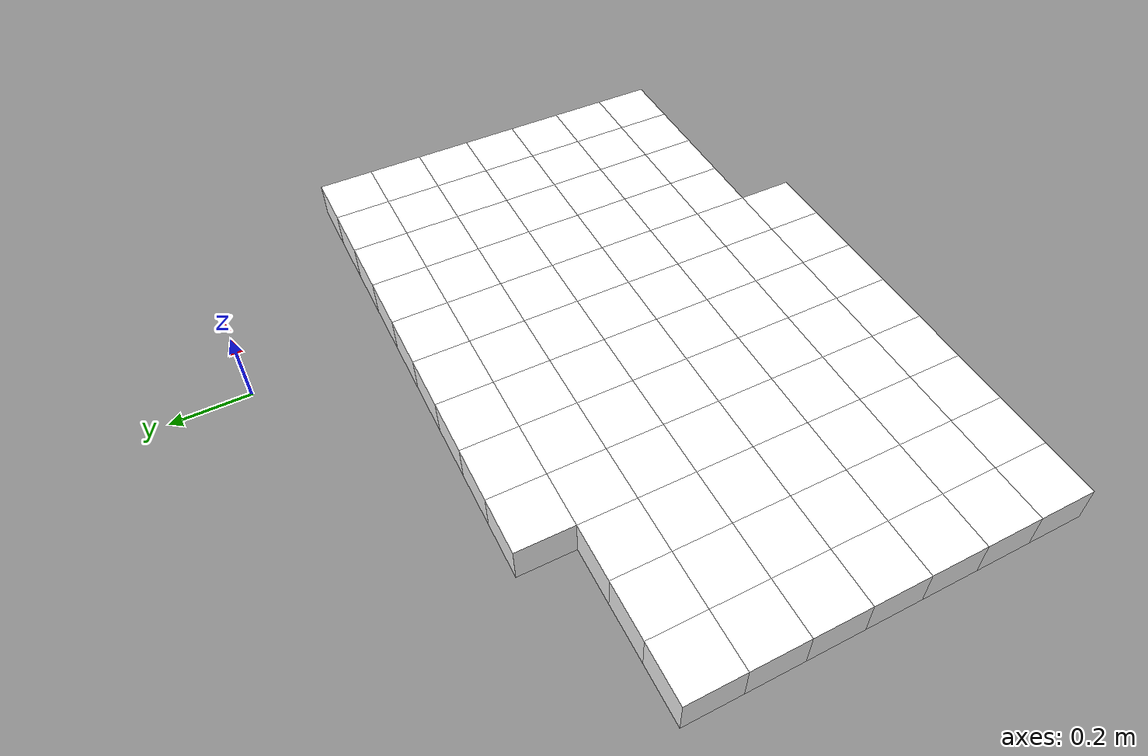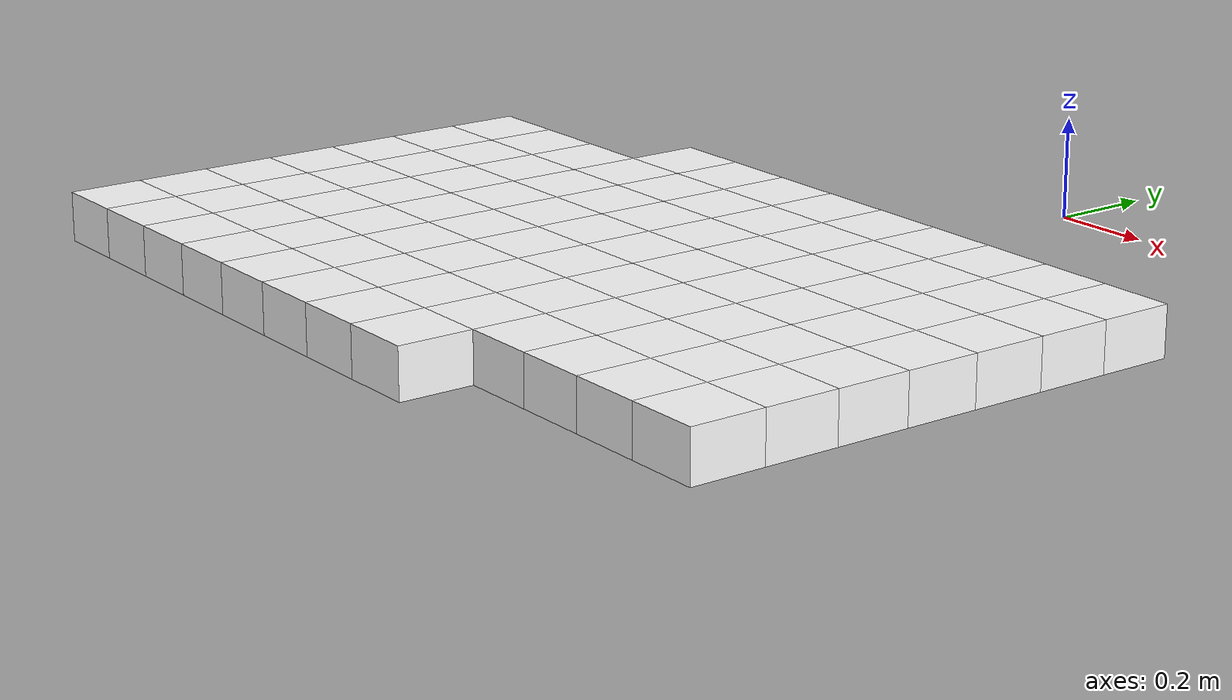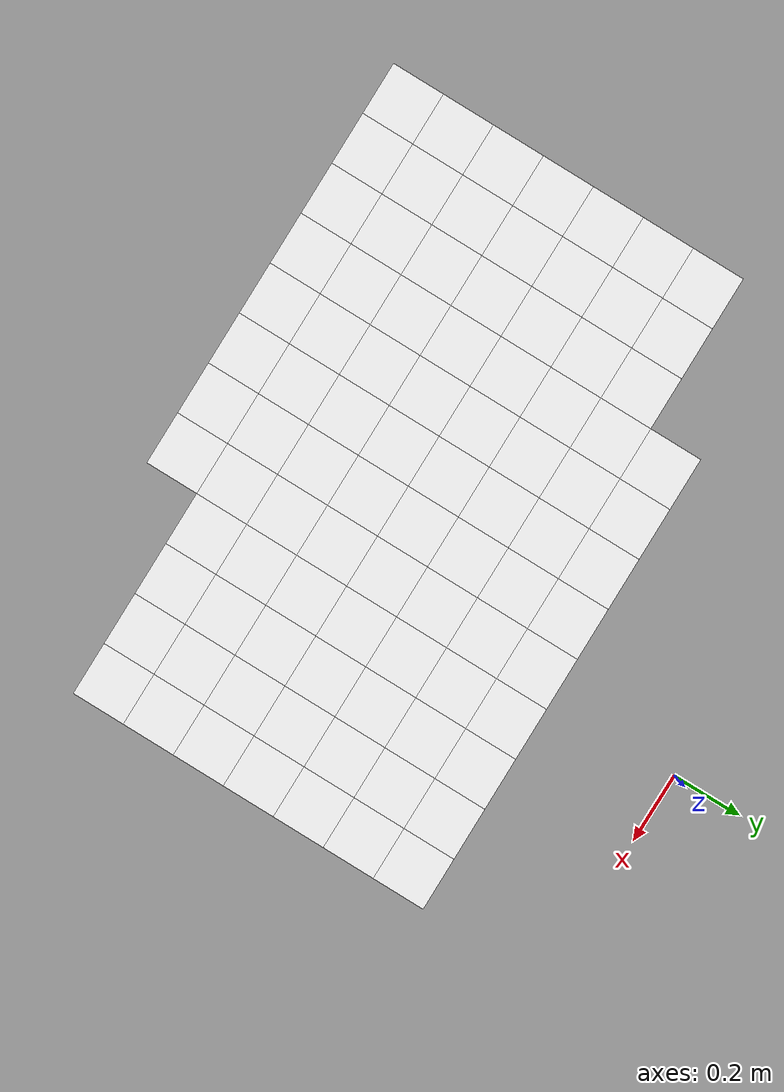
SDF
<sdf version="1.7">
 <world name="default">
  <include><uri>model://sun</uri></include>
  <model name="static_environment">
   <static>true</static>
   <link name="region_128">
    <pose>-1.100106780024366 -0.60008007759561 0.0 0.0 0.0 4.7123</pose>
    <collision name="region_128_collision">
     <geometry><box><size>0.15 0.15 0.1</size></box></geometry>
     <surface><friction><ode><mu>1.0</mu><mu2>1.0</mu2></ode></friction></surface>
    </collision>
    <visual name="region_128_visual">
     <geometry><box><size>0.15 0.15 0.1</size></box></geometry>
     <material><ambient>1.0 1.0 1.0 1.0</ambient><diffuse>1.0 1.0 1.0 1.0</diffuse></material>
    </visual>
   </link>
   <link name="region_129">
    <pose>-1.100120127082052 -0.7500800770017967 0.0 0.0 0.0 4.7123</pose>
    <collision name="region_129_collision">
     <geometry><box><size>0.15 0.15 0.1</size></box></geometry>
     <surface><friction><ode><mu>1.0</mu><mu2>1.0</mu2></ode></friction></surface>
    </collision>
    <visual name="region_129_visual">
     <geometry><box><size>0.15 0.15 0.1</size></box></geometry>
     <material><ambient>1.0 1.0 1.0 1.0</ambient><diffuse>1.0 1.0 1.0 1.0</diffuse></material>
    </visual>
   </link>
   <link name="region_130">
    <pose>-1.1001334741397377 -0.9000800764079836 0.0 0.0 0.0 4.7123</pose>
    <collision name="region_130_collision">
     <geometry><box><size>0.15 0.15 0.1</size></box></geometry>
     <surface><friction><ode><mu>1.0</mu><mu2>1.0</mu2></ode></friction></surface>
    </collision>
    <visual name="region_130_visual">
     <geometry><box><size>0.15 0.15 0.1</size></box></geometry>
     <material><ambient>1.0 1.0 1.0 1.0</ambient><diffuse>1.0 1.0 1.0 1.0</diffuse></material>
    </visual>
   </link>
   <link name="region_131">
    <pose>-1.1001468211974235 -1.0500800758141704 0.0 0.0 0.0 4.7123</pose>
    <collision name="region_131_collision">
     <geometry><box><size>0.15 0.15 0.1</size></box></geometry>
     <surface><friction><ode><mu>1.0</mu><mu2>1.0</mu2></ode></friction></surface>
    </collision>
    <visual name="region_131_visual">
     <geometry><box><size>0.15 0.15 0.1</size></box></geometry>
     <material><ambient>1.0 1.0 1.0 1.0</ambient><diffuse>1.0 1.0 1.0 1.0</diffuse></material>
    </visual>
   </link>
   <link name="region_132">
    <pose>-1.1001601682551094 -1.2000800752203569 0.0 0.0 0.0 4.7123</pose>
    <collision name="region_132_collision">
     <geometry><box><size>0.15 0.15 0.1</size></box></geometry>
     <surface><friction><ode><mu>1.0</mu><mu2>1.0</mu2></ode></friction></surface>
    </collision>
    <visual name="region_132_visual">
     <geometry><box><size>0.15 0.15 0.1</size></box></geometry>
     <material><ambient>1.0 1.0 1.0 1.0</ambient><diffuse>1.0 1.0 1.0 1.0</diffuse></material>
    </visual>
   </link>
   <link name="region_133">
    <pose>-1.1001735153127954 -1.3500800746265438 0.0 0.0 0.0 4.7123</pose>
    <collision name="region_133_collision">
     <geometry><box><size>0.15 0.15 0.1</size></box></geometry>
     <surface><friction><ode><mu>1.0</mu><mu2>1.0</mu2></ode></friction></surface>
    </collision>
    <visual name="region_133_visual">
     <geometry><box><size>0.15 0.15 0.1</size></box></geometry>
     <material><ambient>1.0 1.0 1.0 1.0</ambient><diffuse>1.0 1.0 1.0 1.0</diffuse></material>
    </visual>
   </link>
   <link name="region_134">
    <pose>-1.1001868623704811 -1.5000800740327307 0.0 0.0 0.0 4.7123</pose>
    <collision name="region_134_collision">
     <geometry><box><size>0.15 0.15 0.1</size></box></geometry>
     <surface><friction><ode><mu>1.0</mu><mu2>1.0</mu2></ode></friction></surface>
    </collision>
    <visual name="region_134_visual">
     <geometry><box><size>0.15 0.15 0.1</size></box></geometry>
     <material><ambient>1.0 1.0 1.0 1.0</ambient><diffuse>1.0 1.0 1.0 1.0</diffuse></material>
    </visual>
   </link>
   <link name="region_148">
    <pose>-0.9501067806181791 -0.6000934246532957 0.0 0.0 0.0 4.7123</pose>
    <collision name="region_148_collision">
     <geometry><box><size>0.15 0.15 0.1</size></box></geometry>
     <surface><friction><ode><mu>1.0</mu><mu2>1.0</mu2></ode></friction></surface>
    </collision>
    <visual name="region_148_visual">
     <geometry><box><size>0.15 0.15 0.1</size></box></geometry>
     <material><ambient>1.0 1.0 1.0 1.0</ambient><diffuse>1.0 1.0 1.0 1.0</diffuse></material>
    </visual>
   </link>
   <link name="region_149">
    <pose>-0.9501201276758648 -0.7500934240594824 0.0 0.0 0.0 4.7123</pose>
    <collision name="region_149_collision">
     <geometry><box><size>0.15 0.15 0.1</size></box></geometry>
     <surface><friction><ode><mu>1.0</mu><mu2>1.0</mu2></ode></friction></surface>
    </collision>
    <visual name="region_149_visual">
     <geometry><box><size>0.15 0.15 0.1</size></box></geometry>
     <material><ambient>1.0 1.0 1.0 1.0</ambient><diffuse>1.0 1.0 1.0 1.0</diffuse></material>
    </visual>
   </link>
   <link name="region_150">
    <pose>-0.9501334747335508 -0.9000934234656693 0.0 0.0 0.0 4.7123</pose>
    <collision name="region_150_collision">
     <geometry><box><size>0.15 0.15 0.1</size></box></geometry>
     <surface><friction><ode><mu>1.0</mu><mu2>1.0</mu2></ode></friction></surface>
    </collision>
    <visual name="region_150_visual">
     <geometry><box><size>0.15 0.15 0.1</size></box></geometry>
     <material><ambient>1.0 1.0 1.0 1.0</ambient><diffuse>1.0 1.0 1.0 1.0</diffuse></material>
    </visual>
   </link>
   <link name="region_151">
    <pose>-0.9501468217912368 -1.0500934228718561 0.0 0.0 0.0 4.7123</pose>
    <collision name="region_151_collision">
     <geometry><box><size>0.15 0.15 0.1</size></box></geometry>
     <surface><friction><ode><mu>1.0</mu><mu2>1.0</mu2></ode></friction></surface>
    </collision>
    <visual name="region_151_visual">
     <geometry><box><size>0.15 0.15 0.1</size></box></geometry>
     <material><ambient>1.0 1.0 1.0 1.0</ambient><diffuse>1.0 1.0 1.0 1.0</diffuse></material>
    </visual>
   </link>
   <link name="region_152">
    <pose>-0.9501601688489225 -1.2000934222780426 0.0 0.0 0.0 4.7123</pose>
    <collision name="region_152_collision">
     <geometry><box><size>0.15 0.15 0.1</size></box></geometry>
     <surface><friction><ode><mu>1.0</mu><mu2>1.0</mu2></ode></friction></surface>
    </collision>
    <visual name="region_152_visual">
     <geometry><box><size>0.15 0.15 0.1</size></box></geometry>
     <material><ambient>1.0 1.0 1.0 1.0</ambient><diffuse>1.0 1.0 1.0 1.0</diffuse></material>
    </visual>
   </link>
   <link name="region_153">
    <pose>-0.9501735159066085 -1.3500934216842295 0.0 0.0 0.0 4.7123</pose>
    <collision name="region_153_collision">
     <geometry><box><size>0.15 0.15 0.1</size></box></geometry>
     <surface><friction><ode><mu>1.0</mu><mu2>1.0</mu2></ode></friction></surface>
    </collision>
    <visual name="region_153_visual">
     <geometry><box><size>0.15 0.15 0.1</size></box></geometry>
     <material><ambient>1.0 1.0 1.0 1.0</ambient><diffuse>1.0 1.0 1.0 1.0</diffuse></material>
    </visual>
   </link>
   <link name="region_154">
    <pose>-0.9501868629642942 -1.5000934210904164 0.0 0.0 0.0 4.7123</pose>
    <collision name="region_154_collision">
     <geometry><box><size>0.15 0.15 0.1</size></box></geometry>
     <surface><friction><ode><mu>1.0</mu><mu2>1.0</mu2></ode></friction></surface>
    </collision>
    <visual name="region_154_visual">
     <geometry><box><size>0.15 0.15 0.1</size></box></geometry>
     <material><ambient>1.0 1.0 1.0 1.0</ambient><diffuse>1.0 1.0 1.0 1.0</diffuse></material>
    </visual>
   </link>
   <link name="region_168">
    <pose>-0.8001067812119924 -0.6001067717109817 0.0 0.0 0.0 4.7123</pose>
    <collision name="region_168_collision">
     <geometry><box><size>0.15 0.15 0.1</size></box></geometry>
     <surface><friction><ode><mu>1.0</mu><mu2>1.0</mu2></ode></friction></surface>
    </collision>
    <visual name="region_168_visual">
     <geometry><box><size>0.15 0.15 0.1</size></box></geometry>
     <material><ambient>1.0 1.0 1.0 1.0</ambient><diffuse>1.0 1.0 1.0 1.0</diffuse></material>
    </visual>
   </link>
   <link name="region_169">
    <pose>-0.8001201282696782 -0.7501067711171684 0.0 0.0 0.0 4.7123</pose>
    <collision name="region_169_collision">
     <geometry><box><size>0.15 0.15 0.1</size></box></geometry>
     <surface><friction><ode><mu>1.0</mu><mu2>1.0</mu2></ode></friction></surface>
    </collision>
    <visual name="region_169_visual">
     <geometry><box><size>0.15 0.15 0.1</size></box></geometry>
     <material><ambient>1.0 1.0 1.0 1.0</ambient><diffuse>1.0 1.0 1.0 1.0</diffuse></material>
    </visual>
   </link>
   <link name="region_170">
    <pose>-0.8001334753273641 -0.9001067705233553 0.0 0.0 0.0 4.7123</pose>
    <collision name="region_170_collision">
     <geometry><box><size>0.15 0.15 0.1</size></box></geometry>
     <surface><friction><ode><mu>1.0</mu><mu2>1.0</mu2></ode></friction></surface>
    </collision>
    <visual name="region_170_visual">
     <geometry><box><size>0.15 0.15 0.1</size></box></geometry>
     <material><ambient>1.0 1.0 1.0 1.0</ambient><diffuse>1.0 1.0 1.0 1.0</diffuse></material>
    </visual>
   </link>
   <link name="region_171">
    <pose>-0.8001468223850501 -1.0501067699295419 0.0 0.0 0.0 4.7123</pose>
    <collision name="region_171_collision">
     <geometry><box><size>0.15 0.15 0.1</size></box></geometry>
     <surface><friction><ode><mu>1.0</mu><mu2>1.0</mu2></ode></friction></surface>
    </collision>
    <visual name="region_171_visual">
     <geometry><box><size>0.15 0.15 0.1</size></box></geometry>
     <material><ambient>1.0 1.0 1.0 1.0</ambient><diffuse>1.0 1.0 1.0 1.0</diffuse></material>
    </visual>
   </link>
   <link name="region_172">
    <pose>-0.8001601694427358 -1.2001067693357288 0.0 0.0 0.0 4.7123</pose>
    <collision name="region_172_collision">
     <geometry><box><size>0.15 0.15 0.1</size></box></geometry>
     <surface><friction><ode><mu>1.0</mu><mu2>1.0</mu2></ode></friction></surface>
    </collision>
    <visual name="region_172_visual">
     <geometry><box><size>0.15 0.15 0.1</size></box></geometry>
     <material><ambient>1.0 1.0 1.0 1.0</ambient><diffuse>1.0 1.0 1.0 1.0</diffuse></material>
    </visual>
   </link>
   <link name="region_173">
    <pose>-0.8001735165004218 -1.3501067687419153 0.0 0.0 0.0 4.7123</pose>
    <collision name="region_173_collision">
     <geometry><box><size>0.15 0.15 0.1</size></box></geometry>
     <surface><friction><ode><mu>1.0</mu><mu2>1.0</mu2></ode></friction></surface>
    </collision>
    <visual name="region_173_visual">
     <geometry><box><size>0.15 0.15 0.1</size></box></geometry>
     <material><ambient>1.0 1.0 1.0 1.0</ambient><diffuse>1.0 1.0 1.0 1.0</diffuse></material>
    </visual>
   </link>
   <link name="region_174">
    <pose>-0.8001868635581075 -1.5001067681481022 0.0 0.0 0.0 4.7123</pose>
    <collision name="region_174_collision">
     <geometry><box><size>0.15 0.15 0.1</size></box></geometry>
     <surface><friction><ode><mu>1.0</mu><mu2>1.0</mu2></ode></friction></surface>
    </collision>
    <visual name="region_174_visual">
     <geometry><box><size>0.15 0.15 0.1</size></box></geometry>
     <material><ambient>1.0 1.0 1.0 1.0</ambient><diffuse>1.0 1.0 1.0 1.0</diffuse></material>
    </visual>
   </link>
   <link name="region_187">
    <pose>-0.6500934347481198 -0.45012011936248075 0.0 0.0 0.0 4.7123</pose>
    <collision name="region_187_collision">
     <geometry><box><size>0.15 0.15 0.1</size></box></geometry>
     <surface><friction><ode><mu>1.0</mu><mu2>1.0</mu2></ode></friction></surface>
    </collision>
    <visual name="region_187_visual">
     <geometry><box><size>0.15 0.15 0.1</size></box></geometry>
     <material><ambient>1.0 1.0 1.0 1.0</ambient><diffuse>1.0 1.0 1.0 1.0</diffuse></material>
    </visual>
   </link>
   <link name="region_188">
    <pose>-0.6501067818058057 -0.6001201187686674 0.0 0.0 0.0 4.7123</pose>
    <collision name="region_188_collision">
     <geometry><box><size>0.15 0.15 0.1</size></box></geometry>
     <surface><friction><ode><mu>1.0</mu><mu2>1.0</mu2></ode></friction></surface>
    </collision>
    <visual name="region_188_visual">
     <geometry><box><size>0.15 0.15 0.1</size></box></geometry>
     <material><ambient>1.0 1.0 1.0 1.0</ambient><diffuse>1.0 1.0 1.0 1.0</diffuse></material>
    </visual>
   </link>
   <link name="region_189">
    <pose>-0.6501201288634915 -0.7501201181748541 0.0 0.0 0.0 4.7123</pose>
    <collision name="region_189_collision">
     <geometry><box><size>0.15 0.15 0.1</size></box></geometry>
     <surface><friction><ode><mu>1.0</mu><mu2>1.0</mu2></ode></friction></surface>
    </collision>
    <visual name="region_189_visual">
     <geometry><box><size>0.15 0.15 0.1</size></box></geometry>
     <material><ambient>1.0 1.0 1.0 1.0</ambient><diffuse>1.0 1.0 1.0 1.0</diffuse></material>
    </visual>
   </link>
   <link name="region_190">
    <pose>-0.6501334759211774 -0.900120117581041 0.0 0.0 0.0 4.7123</pose>
    <collision name="region_190_collision">
     <geometry><box><size>0.15 0.15 0.1</size></box></geometry>
     <surface><friction><ode><mu>1.0</mu><mu2>1.0</mu2></ode></friction></surface>
    </collision>
    <visual name="region_190_visual">
     <geometry><box><size>0.15 0.15 0.1</size></box></geometry>
     <material><ambient>1.0 1.0 1.0 1.0</ambient><diffuse>1.0 1.0 1.0 1.0</diffuse></material>
    </visual>
   </link>
   <link name="region_191">
    <pose>-0.6501468229788634 -1.0501201169872276 0.0 0.0 0.0 4.7123</pose>
    <collision name="region_191_collision">
     <geometry><box><size>0.15 0.15 0.1</size></box></geometry>
     <surface><friction><ode><mu>1.0</mu><mu2>1.0</mu2></ode></friction></surface>
    </collision>
    <visual name="region_191_visual">
     <geometry><box><size>0.15 0.15 0.1</size></box></geometry>
     <material><ambient>1.0 1.0 1.0 1.0</ambient><diffuse>1.0 1.0 1.0 1.0</diffuse></material>
    </visual>
   </link>
   <link name="region_192">
    <pose>-0.6501601700365491 -1.2001201163934145 0.0 0.0 0.0 4.7123</pose>
    <collision name="region_192_collision">
     <geometry><box><size>0.15 0.15 0.1</size></box></geometry>
     <surface><friction><ode><mu>1.0</mu><mu2>1.0</mu2></ode></friction></surface>
    </collision>
    <visual name="region_192_visual">
     <geometry><box><size>0.15 0.15 0.1</size></box></geometry>
     <material><ambient>1.0 1.0 1.0 1.0</ambient><diffuse>1.0 1.0 1.0 1.0</diffuse></material>
    </visual>
   </link>
   <link name="region_193">
    <pose>-0.6501735170942351 -1.350120115799601 0.0 0.0 0.0 4.7123</pose>
    <collision name="region_193_collision">
     <geometry><box><size>0.15 0.15 0.1</size></box></geometry>
     <surface><friction><ode><mu>1.0</mu><mu2>1.0</mu2></ode></friction></surface>
    </collision>
    <visual name="region_193_visual">
     <geometry><box><size>0.15 0.15 0.1</size></box></geometry>
     <material><ambient>1.0 1.0 1.0 1.0</ambient><diffuse>1.0 1.0 1.0 1.0</diffuse></material>
    </visual>
   </link>
   <link name="region_194">
    <pose>-0.6501868641519208 -1.5001201152057884 0.0 0.0 0.0 4.7123</pose>
    <collision name="region_194_collision">
     <geometry><box><size>0.15 0.15 0.1</size></box></geometry>
     <surface><friction><ode><mu>1.0</mu><mu2>1.0</mu2></ode></friction></surface>
    </collision>
    <visual name="region_194_visual">
     <geometry><box><size>0.15 0.15 0.1</size></box></geometry>
     <material><ambient>1.0 1.0 1.0 1.0</ambient><diffuse>1.0 1.0 1.0 1.0</diffuse></material>
    </visual>
   </link>
   <link name="region_207">
    <pose>-0.5000934353419328 -0.4501334664201667 0.0 0.0 0.0 4.7123</pose>
    <collision name="region_207_collision">
     <geometry><box><size>0.15 0.15 0.1</size></box></geometry>
     <surface><friction><ode><mu>1.0</mu><mu2>1.0</mu2></ode></friction></surface>
    </collision>
    <visual name="region_207_visual">
     <geometry><box><size>0.15 0.15 0.1</size></box></geometry>
     <material><ambient>1.0 1.0 1.0 1.0</ambient><diffuse>1.0 1.0 1.0 1.0</diffuse></material>
    </visual>
   </link>
   <link name="region_208">
    <pose>-0.5001067823996188 -0.6001334658263534 0.0 0.0 0.0 4.7123</pose>
    <collision name="region_208_collision">
     <geometry><box><size>0.15 0.15 0.1</size></box></geometry>
     <surface><friction><ode><mu>1.0</mu><mu2>1.0</mu2></ode></friction></surface>
    </collision>
    <visual name="region_208_visual">
     <geometry><box><size>0.15 0.15 0.1</size></box></geometry>
     <material><ambient>1.0 1.0 1.0 1.0</ambient><diffuse>1.0 1.0 1.0 1.0</diffuse></material>
    </visual>
   </link>
   <link name="region_209">
    <pose>-0.5001201294573046 -0.7501334652325401 0.0 0.0 0.0 4.7123</pose>
    <collision name="region_209_collision">
     <geometry><box><size>0.15 0.15 0.1</size></box></geometry>
     <surface><friction><ode><mu>1.0</mu><mu2>1.0</mu2></ode></friction></surface>
    </collision>
    <visual name="region_209_visual">
     <geometry><box><size>0.15 0.15 0.1</size></box></geometry>
     <material><ambient>1.0 1.0 1.0 1.0</ambient><diffuse>1.0 1.0 1.0 1.0</diffuse></material>
    </visual>
   </link>
   <link name="region_210">
    <pose>-0.5001334765149905 -0.900133464638727 0.0 0.0 0.0 4.7123</pose>
    <collision name="region_210_collision">
     <geometry><box><size>0.15 0.15 0.1</size></box></geometry>
     <surface><friction><ode><mu>1.0</mu><mu2>1.0</mu2></ode></friction></surface>
    </collision>
    <visual name="region_210_visual">
     <geometry><box><size>0.15 0.15 0.1</size></box></geometry>
     <material><ambient>1.0 1.0 1.0 1.0</ambient><diffuse>1.0 1.0 1.0 1.0</diffuse></material>
    </visual>
   </link>
   <link name="region_211">
    <pose>-0.5001468235726765 -1.0501334640449138 0.0 0.0 0.0 4.7123</pose>
    <collision name="region_211_collision">
     <geometry><box><size>0.15 0.15 0.1</size></box></geometry>
     <surface><friction><ode><mu>1.0</mu><mu2>1.0</mu2></ode></friction></surface>
    </collision>
    <visual name="region_211_visual">
     <geometry><box><size>0.15 0.15 0.1</size></box></geometry>
     <material><ambient>1.0 1.0 1.0 1.0</ambient><diffuse>1.0 1.0 1.0 1.0</diffuse></material>
    </visual>
   </link>
   <link name="region_212">
    <pose>-0.5001601706303622 -1.2001334634511003 0.0 0.0 0.0 4.7123</pose>
    <collision name="region_212_collision">
     <geometry><box><size>0.15 0.15 0.1</size></box></geometry>
     <surface><friction><ode><mu>1.0</mu><mu2>1.0</mu2></ode></friction></surface>
    </collision>
    <visual name="region_212_visual">
     <geometry><box><size>0.15 0.15 0.1</size></box></geometry>
     <material><ambient>1.0 1.0 1.0 1.0</ambient><diffuse>1.0 1.0 1.0 1.0</diffuse></material>
    </visual>
   </link>
   <link name="region_213">
    <pose>-0.5001735176880482 -1.3501334628572872 0.0 0.0 0.0 4.7123</pose>
    <collision name="region_213_collision">
     <geometry><box><size>0.15 0.15 0.1</size></box></geometry>
     <surface><friction><ode><mu>1.0</mu><mu2>1.0</mu2></ode></friction></surface>
    </collision>
    <visual name="region_213_visual">
     <geometry><box><size>0.15 0.15 0.1</size></box></geometry>
     <material><ambient>1.0 1.0 1.0 1.0</ambient><diffuse>1.0 1.0 1.0 1.0</diffuse></material>
    </visual>
   </link>
   <link name="region_214">
    <pose>-0.5001868647457339 -1.500133462263474 0.0 0.0 0.0 4.7123</pose>
    <collision name="region_214_collision">
     <geometry><box><size>0.15 0.15 0.1</size></box></geometry>
     <surface><friction><ode><mu>1.0</mu><mu2>1.0</mu2></ode></friction></surface>
    </collision>
    <visual name="region_214_visual">
     <geometry><box><size>0.15 0.15 0.1</size></box></geometry>
     <material><ambient>1.0 1.0 1.0 1.0</ambient><diffuse>1.0 1.0 1.0 1.0</diffuse></material>
    </visual>
   </link>
   <link name="region_227">
    <pose>-0.35009343593574616 -0.4501468134778527 0.0 0.0 0.0 4.7123</pose>
    <collision name="region_227_collision">
     <geometry><box><size>0.15 0.15 0.1</size></box></geometry>
     <surface><friction><ode><mu>1.0</mu><mu2>1.0</mu2></ode></friction></surface>
    </collision>
    <visual name="region_227_visual">
     <geometry><box><size>0.15 0.15 0.1</size></box></geometry>
     <material><ambient>1.0 1.0 1.0 1.0</ambient><diffuse>1.0 1.0 1.0 1.0</diffuse></material>
    </visual>
   </link>
   <link name="region_228">
    <pose>-0.3501067829934321 -0.6001468128840394 0.0 0.0 0.0 4.7123</pose>
    <collision name="region_228_collision">
     <geometry><box><size>0.15 0.15 0.1</size></box></geometry>
     <surface><friction><ode><mu>1.0</mu><mu2>1.0</mu2></ode></friction></surface>
    </collision>
    <visual name="region_228_visual">
     <geometry><box><size>0.15 0.15 0.1</size></box></geometry>
     <material><ambient>1.0 1.0 1.0 1.0</ambient><diffuse>1.0 1.0 1.0 1.0</diffuse></material>
    </visual>
   </link>
   <link name="region_229">
    <pose>-0.35012013005111786 -0.7501468122902261 0.0 0.0 0.0 4.7123</pose>
    <collision name="region_229_collision">
     <geometry><box><size>0.15 0.15 0.1</size></box></geometry>
     <surface><friction><ode><mu>1.0</mu><mu2>1.0</mu2></ode></friction></surface>
    </collision>
    <visual name="region_229_visual">
     <geometry><box><size>0.15 0.15 0.1</size></box></geometry>
     <material><ambient>1.0 1.0 1.0 1.0</ambient><diffuse>1.0 1.0 1.0 1.0</diffuse></material>
    </visual>
   </link>
   <link name="region_230">
    <pose>-0.3501334771088038 -0.900146811696413 0.0 0.0 0.0 4.7123</pose>
    <collision name="region_230_collision">
     <geometry><box><size>0.15 0.15 0.1</size></box></geometry>
     <surface><friction><ode><mu>1.0</mu><mu2>1.0</mu2></ode></friction></surface>
    </collision>
    <visual name="region_230_visual">
     <geometry><box><size>0.15 0.15 0.1</size></box></geometry>
     <material><ambient>1.0 1.0 1.0 1.0</ambient><diffuse>1.0 1.0 1.0 1.0</diffuse></material>
    </visual>
   </link>
   <link name="region_231">
    <pose>-0.3501468241664898 -1.0501468111025996 0.0 0.0 0.0 4.7123</pose>
    <collision name="region_231_collision">
     <geometry><box><size>0.15 0.15 0.1</size></box></geometry>
     <surface><friction><ode><mu>1.0</mu><mu2>1.0</mu2></ode></friction></surface>
    </collision>
    <visual name="region_231_visual">
     <geometry><box><size>0.15 0.15 0.1</size></box></geometry>
     <material><ambient>1.0 1.0 1.0 1.0</ambient><diffuse>1.0 1.0 1.0 1.0</diffuse></material>
    </visual>
   </link>
   <link name="region_232">
    <pose>-0.35016017122417553 -1.2001468105087865 0.0 0.0 0.0 4.7123</pose>
    <collision name="region_232_collision">
     <geometry><box><size>0.15 0.15 0.1</size></box></geometry>
     <surface><friction><ode><mu>1.0</mu><mu2>1.0</mu2></ode></friction></surface>
    </collision>
    <visual name="region_232_visual">
     <geometry><box><size>0.15 0.15 0.1</size></box></geometry>
     <material><ambient>1.0 1.0 1.0 1.0</ambient><diffuse>1.0 1.0 1.0 1.0</diffuse></material>
    </visual>
   </link>
   <link name="region_233">
    <pose>-0.3501735182818615 -1.350146809914973 0.0 0.0 0.0 4.7123</pose>
    <collision name="region_233_collision">
     <geometry><box><size>0.15 0.15 0.1</size></box></geometry>
     <surface><friction><ode><mu>1.0</mu><mu2>1.0</mu2></ode></friction></surface>
    </collision>
    <visual name="region_233_visual">
     <geometry><box><size>0.15 0.15 0.1</size></box></geometry>
     <material><ambient>1.0 1.0 1.0 1.0</ambient><diffuse>1.0 1.0 1.0 1.0</diffuse></material>
    </visual>
   </link>
   <link name="region_234">
    <pose>-0.35018686533954724 -1.5001468093211598 0.0 0.0 0.0 4.7123</pose>
    <collision name="region_234_collision">
     <geometry><box><size>0.15 0.15 0.1</size></box></geometry>
     <surface><friction><ode><mu>1.0</mu><mu2>1.0</mu2></ode></friction></surface>
    </collision>
    <visual name="region_234_visual">
     <geometry><box><size>0.15 0.15 0.1</size></box></geometry>
     <material><ambient>1.0 1.0 1.0 1.0</ambient><diffuse>1.0 1.0 1.0 1.0</diffuse></material>
    </visual>
   </link>
   <link name="region_247">
    <pose>-0.20009343652955947 -0.4501601605355384 0.0 0.0 0.0 4.7123</pose>
    <collision name="region_247_collision">
     <geometry><box><size>0.15 0.15 0.1</size></box></geometry>
     <surface><friction><ode><mu>1.0</mu><mu2>1.0</mu2></ode></friction></surface>
    </collision>
    <visual name="region_247_visual">
     <geometry><box><size>0.15 0.15 0.1</size></box></geometry>
     <material><ambient>1.0 1.0 1.0 1.0</ambient><diffuse>1.0 1.0 1.0 1.0</diffuse></material>
    </visual>
   </link>
   <link name="region_248">
    <pose>-0.20010678358724543 -0.6001601599417251 0.0 0.0 0.0 4.7123</pose>
    <collision name="region_248_collision">
     <geometry><box><size>0.15 0.15 0.1</size></box></geometry>
     <surface><friction><ode><mu>1.0</mu><mu2>1.0</mu2></ode></friction></surface>
    </collision>
    <visual name="region_248_visual">
     <geometry><box><size>0.15 0.15 0.1</size></box></geometry>
     <material><ambient>1.0 1.0 1.0 1.0</ambient><diffuse>1.0 1.0 1.0 1.0</diffuse></material>
    </visual>
   </link>
   <link name="region_249">
    <pose>-0.20012013064493117 -0.7501601593479118 0.0 0.0 0.0 4.7123</pose>
    <collision name="region_249_collision">
     <geometry><box><size>0.15 0.15 0.1</size></box></geometry>
     <surface><friction><ode><mu>1.0</mu><mu2>1.0</mu2></ode></friction></surface>
    </collision>
    <visual name="region_249_visual">
     <geometry><box><size>0.15 0.15 0.1</size></box></geometry>
     <material><ambient>1.0 1.0 1.0 1.0</ambient><diffuse>1.0 1.0 1.0 1.0</diffuse></material>
    </visual>
   </link>
   <link name="region_250">
    <pose>-0.20013347770261714 -0.9001601587540987 0.0 0.0 0.0 4.7123</pose>
    <collision name="region_250_collision">
     <geometry><box><size>0.15 0.15 0.1</size></box></geometry>
     <surface><friction><ode><mu>1.0</mu><mu2>1.0</mu2></ode></friction></surface>
    </collision>
    <visual name="region_250_visual">
     <geometry><box><size>0.15 0.15 0.1</size></box></geometry>
     <material><ambient>1.0 1.0 1.0 1.0</ambient><diffuse>1.0 1.0 1.0 1.0</diffuse></material>
    </visual>
   </link>
   <link name="region_251">
    <pose>-0.2001468247603031 -1.0501601581602853 0.0 0.0 0.0 4.7123</pose>
    <collision name="region_251_collision">
     <geometry><box><size>0.15 0.15 0.1</size></box></geometry>
     <surface><friction><ode><mu>1.0</mu><mu2>1.0</mu2></ode></friction></surface>
    </collision>
    <visual name="region_251_visual">
     <geometry><box><size>0.15 0.15 0.1</size></box></geometry>
     <material><ambient>1.0 1.0 1.0 1.0</ambient><diffuse>1.0 1.0 1.0 1.0</diffuse></material>
    </visual>
   </link>
   <link name="region_252">
    <pose>-0.20016017181798884 -1.2001601575664722 0.0 0.0 0.0 4.7123</pose>
    <collision name="region_252_collision">
     <geometry><box><size>0.15 0.15 0.1</size></box></geometry>
     <surface><friction><ode><mu>1.0</mu><mu2>1.0</mu2></ode></friction></surface>
    </collision>
    <visual name="region_252_visual">
     <geometry><box><size>0.15 0.15 0.1</size></box></geometry>
     <material><ambient>1.0 1.0 1.0 1.0</ambient><diffuse>1.0 1.0 1.0 1.0</diffuse></material>
    </visual>
   </link>
   <link name="region_253">
    <pose>-0.2001735188756748 -1.3501601569726587 0.0 0.0 0.0 4.7123</pose>
    <collision name="region_253_collision">
     <geometry><box><size>0.15 0.15 0.1</size></box></geometry>
     <surface><friction><ode><mu>1.0</mu><mu2>1.0</mu2></ode></friction></surface>
    </collision>
    <visual name="region_253_visual">
     <geometry><box><size>0.15 0.15 0.1</size></box></geometry>
     <material><ambient>1.0 1.0 1.0 1.0</ambient><diffuse>1.0 1.0 1.0 1.0</diffuse></material>
    </visual>
   </link>
   <link name="region_254">
    <pose>-0.20018686593336055 -1.500160156378846 0.0 0.0 0.0 4.7123</pose>
    <collision name="region_254_collision">
     <geometry><box><size>0.15 0.15 0.1</size></box></geometry>
     <surface><friction><ode><mu>1.0</mu><mu2>1.0</mu2></ode></friction></surface>
    </collision>
    <visual name="region_254_visual">
     <geometry><box><size>0.15 0.15 0.1</size></box></geometry>
     <material><ambient>1.0 1.0 1.0 1.0</ambient><diffuse>1.0 1.0 1.0 1.0</diffuse></material>
    </visual>
   </link>
   <link name="region_267">
    <pose>-0.050093437123372775 -0.4501735075932244 0.0 0.0 0.0 4.7123</pose>
    <collision name="region_267_collision">
     <geometry><box><size>0.15 0.15 0.1</size></box></geometry>
     <surface><friction><ode><mu>1.0</mu><mu2>1.0</mu2></ode></friction></surface>
    </collision>
    <visual name="region_267_visual">
     <geometry><box><size>0.15 0.15 0.1</size></box></geometry>
     <material><ambient>1.0 1.0 1.0 1.0</ambient><diffuse>1.0 1.0 1.0 1.0</diffuse></material>
    </visual>
   </link>
   <link name="region_268">
    <pose>-0.05010678418105874 -0.6001735069994111 0.0 0.0 0.0 4.7123</pose>
    <collision name="region_268_collision">
     <geometry><box><size>0.15 0.15 0.1</size></box></geometry>
     <surface><friction><ode><mu>1.0</mu><mu2>1.0</mu2></ode></friction></surface>
    </collision>
    <visual name="region_268_visual">
     <geometry><box><size>0.15 0.15 0.1</size></box></geometry>
     <material><ambient>1.0 1.0 1.0 1.0</ambient><diffuse>1.0 1.0 1.0 1.0</diffuse></material>
    </visual>
   </link>
   <link name="region_269">
    <pose>-0.05012013123874448 -0.7501735064055978 0.0 0.0 0.0 4.7123</pose>
    <collision name="region_269_collision">
     <geometry><box><size>0.15 0.15 0.1</size></box></geometry>
     <surface><friction><ode><mu>1.0</mu><mu2>1.0</mu2></ode></friction></surface>
    </collision>
    <visual name="region_269_visual">
     <geometry><box><size>0.15 0.15 0.1</size></box></geometry>
     <material><ambient>1.0 1.0 1.0 1.0</ambient><diffuse>1.0 1.0 1.0 1.0</diffuse></material>
    </visual>
   </link>
   <link name="region_270">
    <pose>-0.050133478296430445 -0.9001735058117847 0.0 0.0 0.0 4.7123</pose>
    <collision name="region_270_collision">
     <geometry><box><size>0.15 0.15 0.1</size></box></geometry>
     <surface><friction><ode><mu>1.0</mu><mu2>1.0</mu2></ode></friction></surface>
    </collision>
    <visual name="region_270_visual">
     <geometry><box><size>0.15 0.15 0.1</size></box></geometry>
     <material><ambient>1.0 1.0 1.0 1.0</ambient><diffuse>1.0 1.0 1.0 1.0</diffuse></material>
    </visual>
   </link>
   <link name="region_271">
    <pose>-0.05014682535411641 -1.0501735052179715 0.0 0.0 0.0 4.7123</pose>
    <collision name="region_271_collision">
     <geometry><box><size>0.15 0.15 0.1</size></box></geometry>
     <surface><friction><ode><mu>1.0</mu><mu2>1.0</mu2></ode></friction></surface>
    </collision>
    <visual name="region_271_visual">
     <geometry><box><size>0.15 0.15 0.1</size></box></geometry>
     <material><ambient>1.0 1.0 1.0 1.0</ambient><diffuse>1.0 1.0 1.0 1.0</diffuse></material>
    </visual>
   </link>
   <link name="region_272">
    <pose>-0.05016017241180215 -1.200173504624158 0.0 0.0 0.0 4.7123</pose>
    <collision name="region_272_collision">
     <geometry><box><size>0.15 0.15 0.1</size></box></geometry>
     <surface><friction><ode><mu>1.0</mu><mu2>1.0</mu2></ode></friction></surface>
    </collision>
    <visual name="region_272_visual">
     <geometry><box><size>0.15 0.15 0.1</size></box></geometry>
     <material><ambient>1.0 1.0 1.0 1.0</ambient><diffuse>1.0 1.0 1.0 1.0</diffuse></material>
    </visual>
   </link>
   <link name="region_273">
    <pose>-0.050173519469488115 -1.3501735040303449 0.0 0.0 0.0 4.7123</pose>
    <collision name="region_273_collision">
     <geometry><box><size>0.15 0.15 0.1</size></box></geometry>
     <surface><friction><ode><mu>1.0</mu><mu2>1.0</mu2></ode></friction></surface>
    </collision>
    <visual name="region_273_visual">
     <geometry><box><size>0.15 0.15 0.1</size></box></geometry>
     <material><ambient>1.0 1.0 1.0 1.0</ambient><diffuse>1.0 1.0 1.0 1.0</diffuse></material>
    </visual>
   </link>
   <link name="region_274">
    <pose>-0.05018686652717386 -1.5001735034365318 0.0 0.0 0.0 4.7123</pose>
    <collision name="region_274_collision">
     <geometry><box><size>0.15 0.15 0.1</size></box></geometry>
     <surface><friction><ode><mu>1.0</mu><mu2>1.0</mu2></ode></friction></surface>
    </collision>
    <visual name="region_274_visual">
     <geometry><box><size>0.15 0.15 0.1</size></box></geometry>
     <material><ambient>1.0 1.0 1.0 1.0</ambient><diffuse>1.0 1.0 1.0 1.0</diffuse></material>
    </visual>
   </link>
   <link name="region_287">
    <pose>0.09990656228281436 -0.45018685465091013 0.0 0.0 0.0 4.7123</pose>
    <collision name="region_287_collision">
     <geometry><box><size>0.15 0.15 0.1</size></box></geometry>
     <surface><friction><ode><mu>1.0</mu><mu2>1.0</mu2></ode></friction></surface>
    </collision>
    <visual name="region_287_visual">
     <geometry><box><size>0.15 0.15 0.1</size></box></geometry>
     <material><ambient>1.0 1.0 1.0 1.0</ambient><diffuse>1.0 1.0 1.0 1.0</diffuse></material>
    </visual>
   </link>
   <link name="region_288">
    <pose>0.09989321522512862 -0.6001868540570968 0.0 0.0 0.0 4.7123</pose>
    <collision name="region_288_collision">
     <geometry><box><size>0.15 0.15 0.1</size></box></geometry>
     <surface><friction><ode><mu>1.0</mu><mu2>1.0</mu2></ode></friction></surface>
    </collision>
    <visual name="region_288_visual">
     <geometry><box><size>0.15 0.15 0.1</size></box></geometry>
     <material><ambient>1.0 1.0 1.0 1.0</ambient><diffuse>1.0 1.0 1.0 1.0</diffuse></material>
    </visual>
   </link>
   <link name="region_289">
    <pose>0.09987986816744243 -0.7501868534632835 0.0 0.0 0.0 4.7123</pose>
    <collision name="region_289_collision">
     <geometry><box><size>0.15 0.15 0.1</size></box></geometry>
     <surface><friction><ode><mu>1.0</mu><mu2>1.0</mu2></ode></friction></surface>
    </collision>
    <visual name="region_289_visual">
     <geometry><box><size>0.15 0.15 0.1</size></box></geometry>
     <material><ambient>1.0 1.0 1.0 1.0</ambient><diffuse>1.0 1.0 1.0 1.0</diffuse></material>
    </visual>
   </link>
   <link name="region_290">
    <pose>0.09986652110975669 -0.9001868528694704 0.0 0.0 0.0 4.7123</pose>
    <collision name="region_290_collision">
     <geometry><box><size>0.15 0.15 0.1</size></box></geometry>
     <surface><friction><ode><mu>1.0</mu><mu2>1.0</mu2></ode></friction></surface>
    </collision>
    <visual name="region_290_visual">
     <geometry><box><size>0.15 0.15 0.1</size></box></geometry>
     <material><ambient>1.0 1.0 1.0 1.0</ambient><diffuse>1.0 1.0 1.0 1.0</diffuse></material>
    </visual>
   </link>
   <link name="region_291">
    <pose>0.09985317405207095 -1.0501868522756572 0.0 0.0 0.0 4.7123</pose>
    <collision name="region_291_collision">
     <geometry><box><size>0.15 0.15 0.1</size></box></geometry>
     <surface><friction><ode><mu>1.0</mu><mu2>1.0</mu2></ode></friction></surface>
    </collision>
    <visual name="region_291_visual">
     <geometry><box><size>0.15 0.15 0.1</size></box></geometry>
     <material><ambient>1.0 1.0 1.0 1.0</ambient><diffuse>1.0 1.0 1.0 1.0</diffuse></material>
    </visual>
   </link>
   <link name="region_292">
    <pose>0.09983982699438476 -1.2001868516818437 0.0 0.0 0.0 4.7123</pose>
    <collision name="region_292_collision">
     <geometry><box><size>0.15 0.15 0.1</size></box></geometry>
     <surface><friction><ode><mu>1.0</mu><mu2>1.0</mu2></ode></friction></surface>
    </collision>
    <visual name="region_292_visual">
     <geometry><box><size>0.15 0.15 0.1</size></box></geometry>
     <material><ambient>1.0 1.0 1.0 1.0</ambient><diffuse>1.0 1.0 1.0 1.0</diffuse></material>
    </visual>
   </link>
   <link name="region_293">
    <pose>0.09982647993669902 -1.3501868510880306 0.0 0.0 0.0 4.7123</pose>
    <collision name="region_293_collision">
     <geometry><box><size>0.15 0.15 0.1</size></box></geometry>
     <surface><friction><ode><mu>1.0</mu><mu2>1.0</mu2></ode></friction></surface>
    </collision>
    <visual name="region_293_visual">
     <geometry><box><size>0.15 0.15 0.1</size></box></geometry>
     <material><ambient>1.0 1.0 1.0 1.0</ambient><diffuse>1.0 1.0 1.0 1.0</diffuse></material>
    </visual>
   </link>
   <link name="region_307">
    <pose>0.24990656168900083 -0.4502002017085961 0.0 0.0 0.0 4.7123</pose>
    <collision name="region_307_collision">
     <geometry><box><size>0.15 0.15 0.1</size></box></geometry>
     <surface><friction><ode><mu>1.0</mu><mu2>1.0</mu2></ode></friction></surface>
    </collision>
    <visual name="region_307_visual">
     <geometry><box><size>0.15 0.15 0.1</size></box></geometry>
     <material><ambient>1.0 1.0 1.0 1.0</ambient><diffuse>1.0 1.0 1.0 1.0</diffuse></material>
    </visual>
   </link>
   <link name="region_308">
    <pose>0.24989321463131509 -0.6002002011147828 0.0 0.0 0.0 4.7123</pose>
    <collision name="region_308_collision">
     <geometry><box><size>0.15 0.15 0.1</size></box></geometry>
     <surface><friction><ode><mu>1.0</mu><mu2>1.0</mu2></ode></friction></surface>
    </collision>
    <visual name="region_308_visual">
     <geometry><box><size>0.15 0.15 0.1</size></box></geometry>
     <material><ambient>1.0 1.0 1.0 1.0</ambient><diffuse>1.0 1.0 1.0 1.0</diffuse></material>
    </visual>
   </link>
   <link name="region_309">
    <pose>0.2498798675736289 -0.7502002005209695 0.0 0.0 0.0 4.7123</pose>
    <collision name="region_309_collision">
     <geometry><box><size>0.15 0.15 0.1</size></box></geometry>
     <surface><friction><ode><mu>1.0</mu><mu2>1.0</mu2></ode></friction></surface>
    </collision>
    <visual name="region_309_visual">
     <geometry><box><size>0.15 0.15 0.1</size></box></geometry>
     <material><ambient>1.0 1.0 1.0 1.0</ambient><diffuse>1.0 1.0 1.0 1.0</diffuse></material>
    </visual>
   </link>
   <link name="region_310">
    <pose>0.24986652051594316 -0.9002001999271564 0.0 0.0 0.0 4.7123</pose>
    <collision name="region_310_collision">
     <geometry><box><size>0.15 0.15 0.1</size></box></geometry>
     <surface><friction><ode><mu>1.0</mu><mu2>1.0</mu2></ode></friction></surface>
    </collision>
    <visual name="region_310_visual">
     <geometry><box><size>0.15 0.15 0.1</size></box></geometry>
     <material><ambient>1.0 1.0 1.0 1.0</ambient><diffuse>1.0 1.0 1.0 1.0</diffuse></material>
    </visual>
   </link>
   <link name="region_311">
    <pose>0.24985317345825742 -1.050200199333343 0.0 0.0 0.0 4.7123</pose>
    <collision name="region_311_collision">
     <geometry><box><size>0.15 0.15 0.1</size></box></geometry>
     <surface><friction><ode><mu>1.0</mu><mu2>1.0</mu2></ode></friction></surface>
    </collision>
    <visual name="region_311_visual">
     <geometry><box><size>0.15 0.15 0.1</size></box></geometry>
     <material><ambient>1.0 1.0 1.0 1.0</ambient><diffuse>1.0 1.0 1.0 1.0</diffuse></material>
    </visual>
   </link>
   <link name="region_312">
    <pose>0.24983982640057123 -1.2002001987395299 0.0 0.0 0.0 4.7123</pose>
    <collision name="region_312_collision">
     <geometry><box><size>0.15 0.15 0.1</size></box></geometry>
     <surface><friction><ode><mu>1.0</mu><mu2>1.0</mu2></ode></friction></surface>
    </collision>
    <visual name="region_312_visual">
     <geometry><box><size>0.15 0.15 0.1</size></box></geometry>
     <material><ambient>1.0 1.0 1.0 1.0</ambient><diffuse>1.0 1.0 1.0 1.0</diffuse></material>
    </visual>
   </link>
   <link name="region_313">
    <pose>0.2498264793428855 -1.3502001981457163 0.0 0.0 0.0 4.7123</pose>
    <collision name="region_313_collision">
     <geometry><box><size>0.15 0.15 0.1</size></box></geometry>
     <surface><friction><ode><mu>1.0</mu><mu2>1.0</mu2></ode></friction></surface>
    </collision>
    <visual name="region_313_visual">
     <geometry><box><size>0.15 0.15 0.1</size></box></geometry>
     <material><ambient>1.0 1.0 1.0 1.0</ambient><diffuse>1.0 1.0 1.0 1.0</diffuse></material>
    </visual>
   </link>
   <link name="region_327">
    <pose>0.39990656109518774 -0.45021354876628206 0.0 0.0 0.0 4.7123</pose>
    <collision name="region_327_collision">
     <geometry><box><size>0.15 0.15 0.1</size></box></geometry>
     <surface><friction><ode><mu>1.0</mu><mu2>1.0</mu2></ode></friction></surface>
    </collision>
    <visual name="region_327_visual">
     <geometry><box><size>0.15 0.15 0.1</size></box></geometry>
     <material><ambient>1.0 1.0 1.0 1.0</ambient><diffuse>1.0 1.0 1.0 1.0</diffuse></material>
    </visual>
   </link>
   <link name="region_328">
    <pose>0.399893214037502 -0.6002135481724687 0.0 0.0 0.0 4.7123</pose>
    <collision name="region_328_collision">
     <geometry><box><size>0.15 0.15 0.1</size></box></geometry>
     <surface><friction><ode><mu>1.0</mu><mu2>1.0</mu2></ode></friction></surface>
    </collision>
    <visual name="region_328_visual">
     <geometry><box><size>0.15 0.15 0.1</size></box></geometry>
     <material><ambient>1.0 1.0 1.0 1.0</ambient><diffuse>1.0 1.0 1.0 1.0</diffuse></material>
    </visual>
   </link>
   <link name="region_329">
    <pose>0.3998798669798158 -0.7502135475786554 0.0 0.0 0.0 4.7123</pose>
    <collision name="region_329_collision">
     <geometry><box><size>0.15 0.15 0.1</size></box></geometry>
     <surface><friction><ode><mu>1.0</mu><mu2>1.0</mu2></ode></friction></surface>
    </collision>
    <visual name="region_329_visual">
     <geometry><box><size>0.15 0.15 0.1</size></box></geometry>
     <material><ambient>1.0 1.0 1.0 1.0</ambient><diffuse>1.0 1.0 1.0 1.0</diffuse></material>
    </visual>
   </link>
   <link name="region_330">
    <pose>0.39986651992213007 -0.9002135469848423 0.0 0.0 0.0 4.7123</pose>
    <collision name="region_330_collision">
     <geometry><box><size>0.15 0.15 0.1</size></box></geometry>
     <surface><friction><ode><mu>1.0</mu><mu2>1.0</mu2></ode></friction></surface>
    </collision>
    <visual name="region_330_visual">
     <geometry><box><size>0.15 0.15 0.1</size></box></geometry>
     <material><ambient>1.0 1.0 1.0 1.0</ambient><diffuse>1.0 1.0 1.0 1.0</diffuse></material>
    </visual>
   </link>
   <link name="region_331">
    <pose>0.39985317286444433 -1.0502135463910292 0.0 0.0 0.0 4.7123</pose>
    <collision name="region_331_collision">
     <geometry><box><size>0.15 0.15 0.1</size></box></geometry>
     <surface><friction><ode><mu>1.0</mu><mu2>1.0</mu2></ode></friction></surface>
    </collision>
    <visual name="region_331_visual">
     <geometry><box><size>0.15 0.15 0.1</size></box></geometry>
     <material><ambient>1.0 1.0 1.0 1.0</ambient><diffuse>1.0 1.0 1.0 1.0</diffuse></material>
    </visual>
   </link>
   <link name="region_332">
    <pose>0.39983982580675814 -1.2002135457972156 0.0 0.0 0.0 4.7123</pose>
    <collision name="region_332_collision">
     <geometry><box><size>0.15 0.15 0.1</size></box></geometry>
     <surface><friction><ode><mu>1.0</mu><mu2>1.0</mu2></ode></friction></surface>
    </collision>
    <visual name="region_332_visual">
     <geometry><box><size>0.15 0.15 0.1</size></box></geometry>
     <material><ambient>1.0 1.0 1.0 1.0</ambient><diffuse>1.0 1.0 1.0 1.0</diffuse></material>
    </visual>
   </link>
   <link name="region_333">
    <pose>0.3998264787490724 -1.3502135452034025 0.0 0.0 0.0 4.7123</pose>
    <collision name="region_333_collision">
     <geometry><box><size>0.15 0.15 0.1</size></box></geometry>
     <surface><friction><ode><mu>1.0</mu><mu2>1.0</mu2></ode></friction></surface>
    </collision>
    <visual name="region_333_visual">
     <geometry><box><size>0.15 0.15 0.1</size></box></geometry>
     <material><ambient>1.0 1.0 1.0 1.0</ambient><diffuse>1.0 1.0 1.0 1.0</diffuse></material>
    </visual>
   </link>
   <link name="region_347">
    <pose>0.5499065605013747 -0.4502268958239678 0.0 0.0 0.0 4.7123</pose>
    <collision name="region_347_collision">
     <geometry><box><size>0.15 0.15 0.1</size></box></geometry>
     <surface><friction><ode><mu>1.0</mu><mu2>1.0</mu2></ode></friction></surface>
    </collision>
    <visual name="region_347_visual">
     <geometry><box><size>0.15 0.15 0.1</size></box></geometry>
     <material><ambient>1.0 1.0 1.0 1.0</ambient><diffuse>1.0 1.0 1.0 1.0</diffuse></material>
    </visual>
   </link>
   <link name="region_348">
    <pose>0.5498932134436889 -0.6002268952301545 0.0 0.0 0.0 4.7123</pose>
    <collision name="region_348_collision">
     <geometry><box><size>0.15 0.15 0.1</size></box></geometry>
     <surface><friction><ode><mu>1.0</mu><mu2>1.0</mu2></ode></friction></surface>
    </collision>
    <visual name="region_348_visual">
     <geometry><box><size>0.15 0.15 0.1</size></box></geometry>
     <material><ambient>1.0 1.0 1.0 1.0</ambient><diffuse>1.0 1.0 1.0 1.0</diffuse></material>
    </visual>
   </link>
   <link name="region_349">
    <pose>0.5498798663860027 -0.7502268946363412 0.0 0.0 0.0 4.7123</pose>
    <collision name="region_349_collision">
     <geometry><box><size>0.15 0.15 0.1</size></box></geometry>
     <surface><friction><ode><mu>1.0</mu><mu2>1.0</mu2></ode></friction></surface>
    </collision>
    <visual name="region_349_visual">
     <geometry><box><size>0.15 0.15 0.1</size></box></geometry>
     <material><ambient>1.0 1.0 1.0 1.0</ambient><diffuse>1.0 1.0 1.0 1.0</diffuse></material>
    </visual>
   </link>
   <link name="region_350">
    <pose>0.549866519328317 -0.9002268940425281 0.0 0.0 0.0 4.7123</pose>
    <collision name="region_350_collision">
     <geometry><box><size>0.15 0.15 0.1</size></box></geometry>
     <surface><friction><ode><mu>1.0</mu><mu2>1.0</mu2></ode></friction></surface>
    </collision>
    <visual name="region_350_visual">
     <geometry><box><size>0.15 0.15 0.1</size></box></geometry>
     <material><ambient>1.0 1.0 1.0 1.0</ambient><diffuse>1.0 1.0 1.0 1.0</diffuse></material>
    </visual>
   </link>
   <link name="region_351">
    <pose>0.5498531722706312 -1.050226893448715 0.0 0.0 0.0 4.7123</pose>
    <collision name="region_351_collision">
     <geometry><box><size>0.15 0.15 0.1</size></box></geometry>
     <surface><friction><ode><mu>1.0</mu><mu2>1.0</mu2></ode></friction></surface>
    </collision>
    <visual name="region_351_visual">
     <geometry><box><size>0.15 0.15 0.1</size></box></geometry>
     <material><ambient>1.0 1.0 1.0 1.0</ambient><diffuse>1.0 1.0 1.0 1.0</diffuse></material>
    </visual>
   </link>
   <link name="region_352">
    <pose>0.549839825212945 -1.2002268928549014 0.0 0.0 0.0 4.7123</pose>
    <collision name="region_352_collision">
     <geometry><box><size>0.15 0.15 0.1</size></box></geometry>
     <surface><friction><ode><mu>1.0</mu><mu2>1.0</mu2></ode></friction></surface>
    </collision>
    <visual name="region_352_visual">
     <geometry><box><size>0.15 0.15 0.1</size></box></geometry>
     <material><ambient>1.0 1.0 1.0 1.0</ambient><diffuse>1.0 1.0 1.0 1.0</diffuse></material>
    </visual>
   </link>
   <link name="region_353">
    <pose>0.5498264781552593 -1.3502268922610883 0.0 0.0 0.0 4.7123</pose>
    <collision name="region_353_collision">
     <geometry><box><size>0.15 0.15 0.1</size></box></geometry>
     <surface><friction><ode><mu>1.0</mu><mu2>1.0</mu2></ode></friction></surface>
    </collision>
    <visual name="region_353_visual">
     <geometry><box><size>0.15 0.15 0.1</size></box></geometry>
     <material><ambient>1.0 1.0 1.0 1.0</ambient><diffuse>1.0 1.0 1.0 1.0</diffuse></material>
    </visual>
   </link>
  </model>
 </world>
</sdf>
